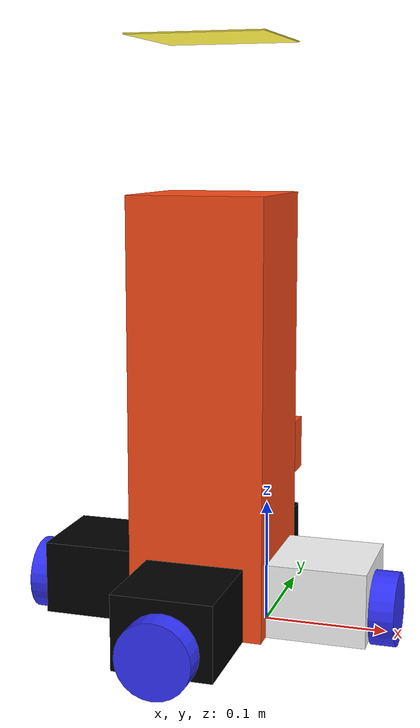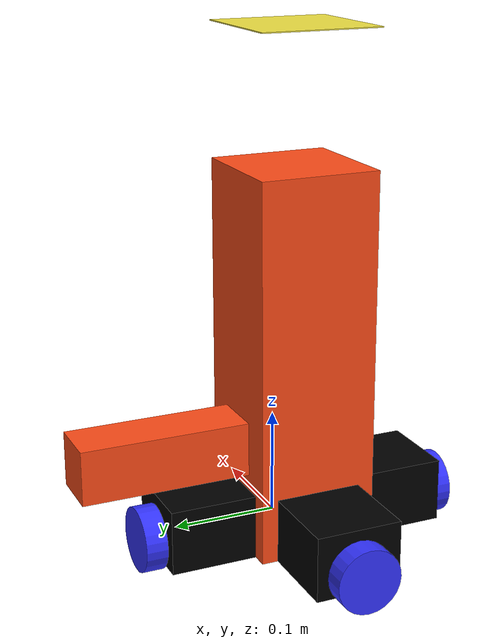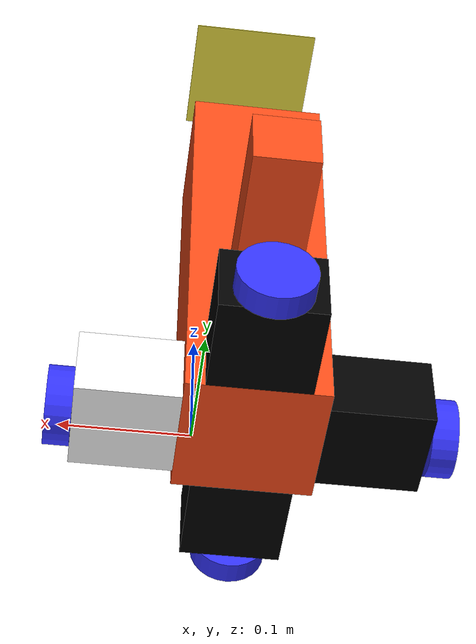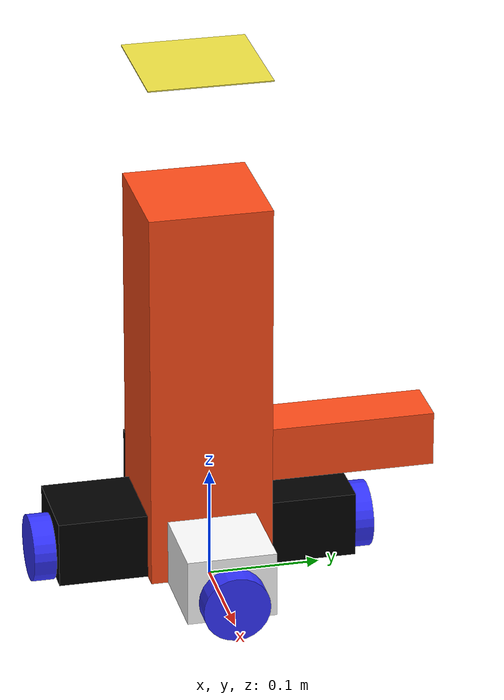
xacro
<?xml version="1.0"?>

<robot xmlns:xacro="http://www.ros.org/wiki/xacro" >

    <xacro:include filename="inertial_macros.xacro" />

    <material name="white">
        <color rgba="1 1 1 1" />
    </material>

    <material name="orange">
        <color rgba="1 0.3 0.1 1"/>
    </material>

    <material name="blue">
        <color rgba="0.2 0.2 1 1"/>
    </material>

    <material name="black">
        <color rgba="0 0 0 1"/>
    </material>

    <material name="red">
        <color rgba="1 0 0 1"/>
    </material>

    <link name="base_link">
    </link>

    <!--Chassis-->

    <joint name= "chassis_joint" type="fixed">
        <parent link="base_link"/>
        <child link="chassis"/>
        <origin xyz="-0.1 0 0"/>
    </joint>

    <link name="base_footprint">
    </link>

    <joint name= "base_footprint_joint" type="fixed">
        <parent link="base_footprint"/>
        <child link="base_link"/>
        <origin xyz="0 0 0"/>
    </joint>

    <link name="chassis">
        <visual>
            <origin xyz="0.055 0 0.175"/>
            <geometry>
                <box size="0.11 0.11 0.35"/>
            </geometry>
            <material name="orange"/>
        </visual>
        <collision>
            <origin xyz="0.055 0 0.175"/>
            <geometry>
                <box size="0.11 0.11 0.35"/>
            </geometry>
        </collision>
        <xacro:inertial_box mass="0.5" x="0.11" y="0.11" z="0.35">
            <origin xyz="0.055 0 0.175" rpy="0 0 0"/>
        </xacro:inertial_box>
    </link>

    <gazebo reference="chassis">
        <material>Gazebo/Orange</material>
    </gazebo>
    <!--bloc aruco-->

    <joint name= "bloc_aruco_joint" type="fixed">
        <parent link="chassis"/>
        <child link="bloc_aruco"/>
        <origin xyz="0.055 0 0"/>
    </joint>

    <link name="bloc_aruco">
        <visual>
            <origin xyz="0 0 0.47"/>
            <geometry>
                <box size="0.11 0.11 0.001"/>
            </geometry>
        </visual>
        <collision>
            <origin xyz="0 0 0.47"/>
            <geometry>
                <box size="0.11 0.11 0.001"/>
            </geometry>
        </collision>
        <xacro:inertial_box mass="0.5" x="0.11" y="0.11" z="0.001">
            <origin xyz="0 0 0.47" rpy="0 0 0"/>
        </xacro:inertial_box>
    </link>

    <gazebo reference="bloc_aruco" link="">
        <visual>
        <material>
            <script>
                <uri>$(find ezbot_robot)/media/materials/scripts</uri>
                <uri>$(find ezbot_robot)/media/materials/textures</uri>
                <name>arucoMat</name>
            </script>
        </material>
        </visual>
    </gazebo>
    <!--bloc avant-->

    <joint name= "bloc_avant_joint" type="fixed">
        <parent link="chassis"/>
        <child link="bloc_avant"/>
        <origin xyz="0.11 0 0"/>
    </joint>

    <link name="bloc_avant">
        <visual>
            <origin xyz="0.04 0 0.03"/>
            <geometry>
                <box size="0.08 0.08 0.06"/>
            </geometry>
            <material name="white"/>
        </visual>
        <collision>
            <origin xyz="0.04 0 0.03"/>
            <geometry>
                <box size="0.08 0.08 0.06"/>
            </geometry>
        </collision>
        <xacro:inertial_box mass="0.5" x="0.08" y="0.08" z="0.06">
            <origin xyz="0.04 0 0.03" rpy="0 0 0"/>
        </xacro:inertial_box>
    </link>

    <gazebo reference="bloc_avant">
        <material>Gazebo/White</material>
    </gazebo>

    <!--bloc arriere-->

    <joint name= "bloc_arriere_joint" type="fixed">
        <parent link="chassis"/>
        <child link="bloc_arriere"/>
        <origin xyz="-0.08 0 0"/>
    </joint>

    <link name="bloc_arriere">
        <visual>
            <origin xyz="0.04 0 0.03"/>
            <geometry>
                <box size="0.08 0.08 0.06"/>
            </geometry>
            <material name="black"/>
        </visual>
        <collision>
            <origin xyz="0.04 0 0.03"/>
            <geometry>
                <box size="0.08 0.08 0.06"/>
            </geometry>
        </collision>
        <xacro:inertial_box mass="0.05" x="0.08" y="0.08" z="0.06">
            <origin xyz="0.04 0 0.03" rpy="0 0 0"/>
        </xacro:inertial_box>
    </link>

    <gazebo reference="bloc_arriere">
        <material>Gazebo/Black</material>
    </gazebo>

    <!--bloc gauche-->

    <joint name= "bloc_gauche_joint" type="fixed">
        <parent link="chassis"/>
        <child link="bloc_gauche"/>
        <origin xyz="0.015 0.095 0"/>
    </joint>

    <link name="bloc_gauche">
        <visual>
            <origin xyz="0.04 0 0.03"/>
            <geometry>
                <box size="0.08 0.08 0.06"/>
            </geometry>
            <material name="black"/>
        </visual>
        <collision>
            <origin xyz="0.04 0 0.03"/>
            <geometry>
                <box size="0.08 0.08 0.06"/>
            </geometry>
        </collision>
        <xacro:inertial_box mass="0.5" x="0.08" y="0.08" z="0.06">
            <origin xyz="0.04 0 0.03" rpy="0 0 0"/>
        </xacro:inertial_box>
    </link>

    <gazebo reference="bloc_gauche">
        <material>Gazebo/Black</material>
    </gazebo>

    <!--bloc droit-->

    <joint name= "bloc_droit_joint" type="fixed">
        <parent link="chassis"/>
        <child link="bloc_droit"/>
        <origin xyz="0.015 -0.095 0"/>
    </joint>

    <link name="bloc_droit">
        <visual>
            <origin xyz="0.04 0 0.03"/>
            <geometry>
                <box size="0.08 0.08 0.06"/>
            </geometry>
            <material name="black"/>
        </visual>
        <collision>
            <origin xyz="0.04 0 0.03"/>
            <geometry>
                <box size="0.08 0.08 0.06"/>
            </geometry>
        </collision>
        <xacro:inertial_box mass="0.5" x="0.08" y="0.08" z="0.06">
            <origin xyz="0.04 0 0.03" rpy="0 0 0"/>
        </xacro:inertial_box>
    </link>

    <gazebo reference="bloc_droit">
        <material>Gazebo/Black</material>
    </gazebo>

    <!--roue droite-->

    <joint name= "roue_droite_joint" type="continuous">
        <parent link="bloc_droit"/>
        <child link="roue_droite"/>
        <origin xyz="0.04 -0.05 0.02" rpy="-${pi/2} 0 0"/>
        <axis xyz="0 0 1"/>
    </joint>

    <link name='roue_droite'>
        <visual>
            <material name="blue"/>
            <geometry>
                <cylinder radius="0.03" length="0.02"/>
            </geometry>
        </visual>
        <collision>
            <geometry>
                <cylinder radius="0.03" length="0.02"/>
            </geometry>
        </collision>
        <xacro:inertial_cylinder mass="0.1" radius="0.03" length="0.02">
            <origin xyz="0 0 0" rpy="0 0 0"/>
        </xacro:inertial_cylinder>
    </link>

    <gazebo reference="roue_droite">
        <material>Gazebo/Blue</material>
        <fdir1>1 0 0</fdir1>
        <mu1>0.9</mu1>
        <mu2>0.1</mu2>
        <collision>
            <surface>
                <contact>
                <ode>
                    <max_vel>0</max_vel>
                    <min_depth>0.02</min_depth>
                </ode>
                </contact>
            </surface>
        </collision>
    </gazebo>

    <!--roue gauche-->

    <joint name= "roue_gauche_joint" type="continuous">
        <parent link="bloc_gauche"/>
        <child link="roue_gauche"/>
        <origin xyz="0.04 0.05 0.02" rpy="-${pi/2} 0 0"/>
        <axis xyz="0 0 1"/>
    </joint>

    <link name='roue_gauche'>
        <visual>
            <material name="blue"/>
            <geometry>
                <cylinder radius="0.03" length="0.02"/>
            </geometry>
        </visual>
        <collision>
            <geometry>
                <cylinder radius="0.03" length="0.02"/>
            </geometry>
        </collision>
        <xacro:inertial_cylinder mass="0.1" radius="0.03" length="0.02">
            <origin xyz="0 0 0" rpy="0 0 0"/>
        </xacro:inertial_cylinder>
    </link>

    <gazebo reference="roue_gauche">
        <material>Gazebo/Blue</material>
        <fdir1>1 0 0</fdir1>
        <mu1>0.9</mu1>
        <mu2>0.1</mu2>
        <collision>
            <surface>
                <contact>
                <ode>
                    <max_vel>0</max_vel>

                    <min_depth>0.02</min_depth>
                </ode>
                </contact>
            </surface>
        </collision>
    </gazebo>

    <!--roue avant-->

    <joint name= "roue_avant_joint" type="continuous">
        <parent link="bloc_avant"/>
        <child link="roue_avant"/>
        <origin xyz="0.09 0 0.02" rpy="0 ${pi/2} 0"/>
        <axis xyz="0 0 1"/>
    </joint>

    <link name='roue_avant'>
        <visual>
            <material name="blue"/>
            <geometry>
                <cylinder radius="0.03" length="0.02"/>
            </geometry>
        </visual>
        <collision>
            <geometry>
                <cylinder radius="0.03" length="0.02"/>
            </geometry>
        </collision>
        <xacro:inertial_cylinder mass="0.1" radius="0.03" length="0.02">
            <origin xyz="0 0 0" rpy="0 0 0"/>
        </xacro:inertial_cylinder>
    </link>

    <gazebo reference="roue_avant">
        <material>Gazebo/Blue</material>
        <fdir1>1 0 0</fdir1>
        <mu1>0.9</mu1>
        <mu2>0.1</mu2>
        <collision>
            <surface>
                <contact>
                <ode>
                    <max_vel>0</max_vel>
                    <min_depth>0.02</min_depth>
                </ode>
                </contact>
            </surface>
        </collision>
    </gazebo>

    <!--roue arriere-->

    <joint name= "roue_arriere_joint" type="continuous">
        <parent link="bloc_arriere"/>
        <child link="roue_arriere"/>
        <origin xyz="-0.01 0 0.02" rpy="0 ${pi/2} 0"/>
        <axis xyz="0 0 1"/>
    </joint>

    <link name='roue_arriere'>
        <visual>
            <material name="blue"/>
            <geometry>
                <cylinder radius="0.03" length="0.02"/>
            </geometry>
        </visual>
        <collision>
            <geometry>
                <cylinder radius="0.03" length="0.02"/>
            </geometry>
        </collision>
        <xacro:inertial_cylinder mass="0.1" radius="0.03" length="0.02">
            <origin xyz="0 0 0" rpy="0 0 0"/>
        </xacro:inertial_cylinder>
    </link>

    <gazebo reference="roue_arriere">
        <material>Gazebo/Blue</material>
        <fdir1>1 0 0</fdir1>
        <mu1>0.9</mu1>
        <mu2>0.1</mu2>
        <collision>
            <surface>
                <contact>
                <ode>
                    <max_vel>0</max_vel>
                    <min_depth>0.02</min_depth>
                </ode>
                </contact>
            </surface>
        </collision>
    </gazebo>

    <link name="renverseur_de_panneaux">
        <visual>
            <origin xyz="0.055 0.11 0.10"/>
            <geometry>
                <box size="0.05 0.20 0.05"/>
            </geometry>
            <material name="orange"/>
        </visual>
        <collision>
            <origin xyz="0.055 0.11 0.10"/>
            <geometry>
                <box size="0.05 0.20 0.05"/>
            </geometry>
        </collision>
        <xacro:inertial_box mass="0.5" x="0.05" y="0.15" z="0.05">
            <origin xyz="0.055 0 0.10" rpy="0 0 0"/>
        </xacro:inertial_box>
    </link>

    <joint name= "renverseur_de_panneaux_joint" type="fixed">
        <parent link="chassis"/>
        <child link="renverseur_de_panneaux"/>
    </joint>

    <gazebo reference="renverseur_de_panneaux">
        <material>Gazebo/Purple</material>
    </gazebo>

</robot>
